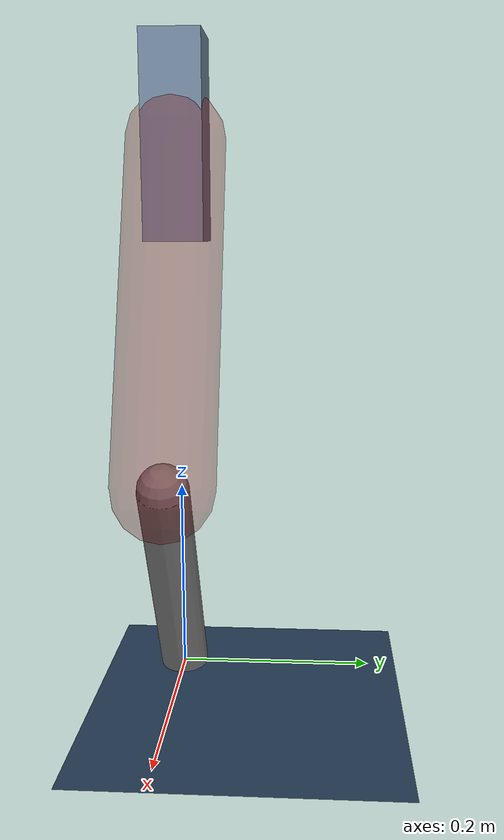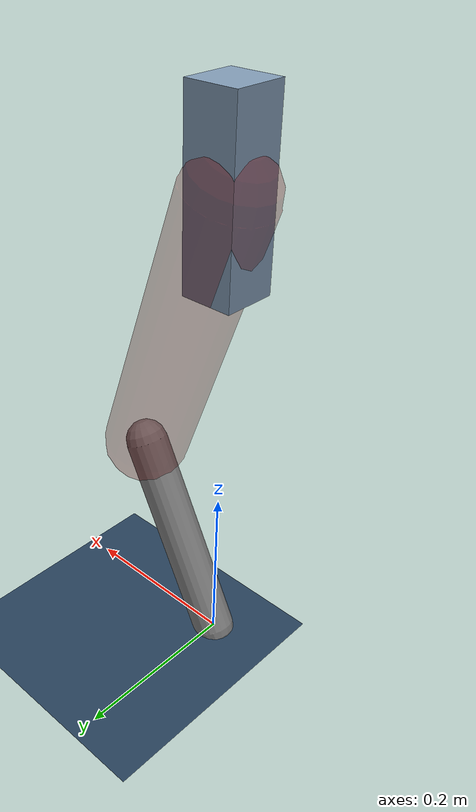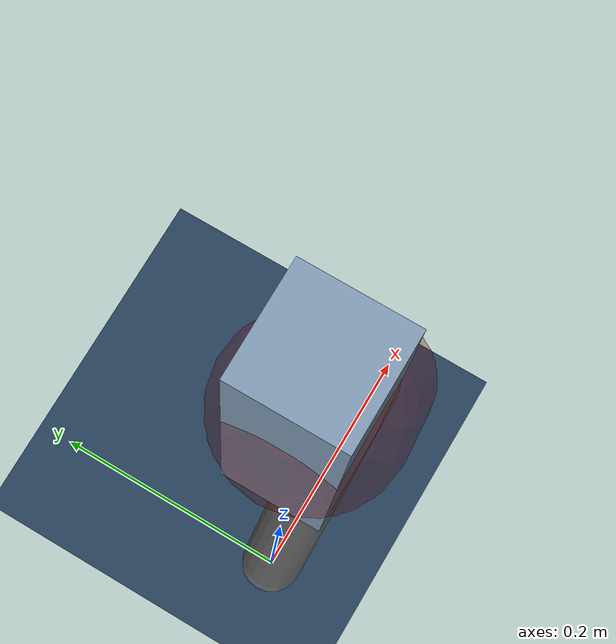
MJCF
<mujoco model="Hopper2D">
	<compiler inertiafromgeom="true" angle="radian" />
	<option timestep="0.001" integrator="implicit" cone="elliptic" solver="Newton" tolerance="1e-10" />

	<default>
		<geom contype="1" conaffinity="1" condim="3" friction="2 0.005 0.0001" solref="0.005 1" />
		<joint limited="true" damping="0.1" />
	</default>

	<asset>
		<texture name="skybox" type="skybox" builtin="gradient" rgb1=".4 .6 .8" rgb2="0 0 0" width="800" height="800" />
		<texture name="grid" type="2d" builtin="checker" rgb1=".1 .2 .3" rgb2=".2 .3 .4" width="300" height="300" mark="edge" markrgb=".2 .3 .4" />
		<material name="ground" texture="grid" texrepeat="1 1" texuniform="true" reflectance="0.1" />
		<material name="leg" rgba="0.5 0.6 0.7 1" />
	</asset>

	<worldbody>

		<geom name="floor" type="plane" size="5 5 0.25" material="ground" />

		<light directional="false" diffuse="0.8 0.8 0.8" specular="0.3 0.3 0.3" pos="0 0 2" dir="0 0 -1" />
		<light mode="targetbodycom" target="base" directional="false" diffuse="0.8 0.8 0.8" specular="0.3 0.3 0.3" pos="0 0 2" dir="0 0 -1" />

		<camera name="fixed" pos="0 -2 1" xyaxes="1 0 0 0 0 1" />
		<camera name="tracking" mode="trackcom" pos="0 -3 1" />

		<body name="root" pos="0 0 0.5570427890855676">
			<joint name="slide_x" type="slide" axis="1 0 0" range="-100 100" />
			<joint name="slide_z" type="slide" axis="0 0 1" range="0 10" />

			<body name="base" pos="0 0 0">
				<geom name="torso" type="box" size="0.03 0.03 0.1" mass="2.48" material="leg" />

				<body name="link1" pos="0 0 0" euler="0 1.2312267055446242 0">
					<joint type="hinge" axis="0 -1 0" pos="0 0 0" name="hinge1" limited="true" range="-3.14 3.14" stiffness="0" damping="0.1" />
					<geom name="thigh" type="capsule" fromto="0 0 0 0.3466049541629217 0 0" size="0.05" rgba="0.5 0 0 0.3" mass="1.117154367072473" />

					<body name="link2" pos="0.3466049541629217 0 0" euler="0 0.8043730347894121 0">
						<joint type="hinge" axis="0 -1 0" pos="0 0 0" name="hinge2" limited="true" range="-3.14 3.14" stiffness="0" damping="0.1" />
						<geom name="shank" type="capsule" fromto="0 0 0 0.2575535699137457 0 0" size="0.025" mass="0.4487428559309965" />

					</body>
				</body>
			</body>
		</body>
	</worldbody>

	<actuator>
		<motor name="torque1" joint="hinge1" ctrlrange="-63.7954698791075 63.7954698791075" ctrllimited="true" gear="1" />
		<motor name="torque2" joint="hinge2" ctrlrange="-45.85802934057815 45.85802934057815" ctrllimited="true" gear="1" />
	</actuator>
</mujoco>
